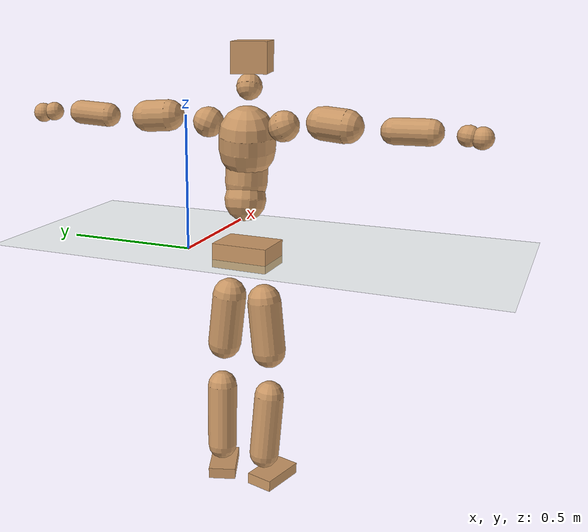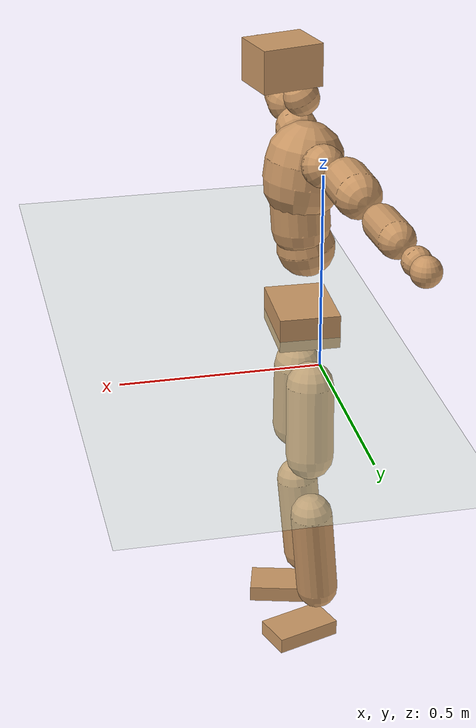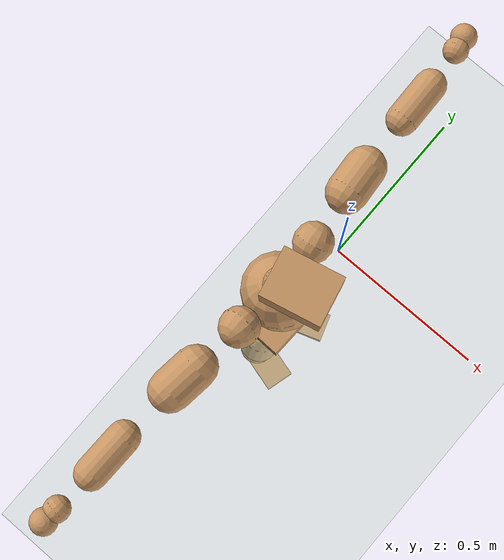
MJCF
<mujoco model="humanoid">
  <compiler coordinate="local" angle="radian"/>
  <default>
    <joint damping="0.0" armature="0.01" stiffness="0.0" limited="true"/>
    <geom conaffinity="1" condim="3" contype="7" margin="0.001" rgba="0.8 0.6 .4 1"/>
  </default>
  <asset>
    <texture type="skybox" builtin="gradient" rgb1=".4 .5 .6" rgb2="0 0 0" width="100" height="100"/>
    <texture builtin="flat" height="1278" mark="cross" markrgb="1 1 1" name="texgeom" random="0.01" rgb1="0.8 0.6 0.4" rgb2="0.8 0.6 0.4" type="cube" width="127"/>
    <texture builtin="checker" height="100" name="texplane" rgb1="0 0 0" rgb2="0.8 0.8 0.8" type="2d" width="100"/>
    <material name="MatPlane" reflectance="0.5" shininess="1" specular="1" texrepeat="60 60" texture="texplane"/>
    <material name="geom" texture="texgeom" texuniform="true"/>
  </asset>
  <worldbody>
    <light cutoff="100" diffuse="1 1 1" dir="-0 0 -1.3" directional="true" exponent="1" pos="0 0 1.3" specular=".1 .1 .1"/>
    <geom conaffinity="1" condim="3" name="floor" pos="0 0 0" rgba="0.8 0.9 0.8 1" size="100 100 .2" type="plane" material="MatPlane"/>
    <body name="Pelvis" pos="-0.0023 -0.2496 0.0214">
      <freejoint name="Pelvis"/>
      <geom type="box" contype="1" conaffinity="1" density="5359.374869" pos="-0.0126 0.0003 -0.0084" size="0.079 0.1051 0.0446" quat="0.9999 0.0000 0.0000 -0.0138" name="Pelvis"/>
      <body name="L_Hip" pos="-0.0223 0.0584 -0.0823">
        <joint name="L_Hip_x" type="hinge" pos="0 0 0" axis="1 0 0" stiffness="1600" damping="160" armature="0.02" range="-180.0000 180.0000"/>
        <joint name="L_Hip_y" type="hinge" pos="0 0 0" axis="0 1 0" stiffness="1600" damping="160" armature="0.02" range="-180.0000 180.0000"/>
        <joint name="L_Hip_z" type="hinge" pos="0 0 0" axis="0 0 1" stiffness="1600" damping="160" armature="0.02" range="-180.0000 180.0000"/>
        <geom type="capsule" contype="1" conaffinity="1" density="2040.816327" size="0.0631" fromto="0.0019 0.0107 -0.0924 0.0060 0.0334 -0.2886" name="L_Hip"/>
        <body name="L_Knee" pos="0.0079 0.0442 -0.381">
          <joint name="L_Knee_x" type="hinge" pos="0 0 0" axis="1 0 0" stiffness="1600" damping="160" armature="0.02" range="-180.0000 180.0000"/>
          <joint name="L_Knee_y" type="hinge" pos="0 0 0" axis="0 1 0" stiffness="1600" damping="160" armature="0.02" range="-180.0000 180.0000"/>
          <joint name="L_Knee_z" type="hinge" pos="0 0 0" axis="0 0 1" stiffness="1600" damping="160" armature="0.02" range="-180.0000 180.0000"/>
          <geom type="capsule" contype="1" conaffinity="1" density="1234.567901" size="0.0559" fromto="-0.0076 -0.0029 -0.0855 -0.0292 -0.0112 -0.3272" name="L_Knee"/>
          <body name="L_Ankle" pos="-0.0368 -0.0141 -0.4127">
            <joint name="L_Ankle_x" type="hinge" pos="0 0 0" axis="1 0 0" stiffness="1600" damping="160" armature="0.02" range="-180.0000 180.0000"/>
            <joint name="L_Ankle_y" type="hinge" pos="0 0 0" axis="0 1 0" stiffness="1600" damping="160" armature="0.02" range="-180.0000 180.0000"/>
            <joint name="L_Ankle_z" type="hinge" pos="0 0 0" axis="0 0 1" stiffness="1600" damping="160" armature="0.02" range="-180.0000 180.0000"/>
            <geom type="box" contype="1" conaffinity="1" density="999.999958" pos="0.0606 0.0203 -0.0298" size="0.0886 0.0519 0.0211" quat="0.9870 0.0000 0.0000 0.1607" name="L_Ankle"/>
            <body name="L_Toe" pos="0.1213 0.0406 -0.0596">
              <joint name="L_Toe_x" type="hinge" pos="0 0 0" axis="1 0 0" stiffness="1000" damping="100" armature="0.02" range="-180.0000 180.0000"/>
              <joint name="L_Toe_y" type="hinge" pos="0 0 0" axis="0 1 0" stiffness="1000" damping="100" armature="0.02" range="-180.0000 180.0000"/>
              <joint name="L_Toe_z" type="hinge" pos="0 0 0" axis="0 0 1" stiffness="1000" damping="100" armature="0.02" range="-180.0000 180.0000"/>
              <geom type="box" contype="1" conaffinity="1" density="8053239.807949" pos="0.0000 0.0000 0.0295" size="0.0011 0.0025 0.001" quat="0.9862 0.0000 0.0000 0.1655" name="L_Toe"/>
            </body>
          </body>
        </body>
      </body>
      <body name="R_Hip" pos="-0.0197 -0.0603 -0.0892">
        <joint name="R_Hip_x" type="hinge" pos="0 0 0" axis="1 0 0" stiffness="1600" damping="160" armature="0.02" range="-180.0000 180.0000"/>
        <joint name="R_Hip_y" type="hinge" pos="0 0 0" axis="0 1 0" stiffness="1600" damping="160" armature="0.02" range="-180.0000 180.0000"/>
        <joint name="R_Hip_z" type="hinge" pos="0 0 0" axis="0 0 1" stiffness="1600" damping="160" armature="0.02" range="-180.0000 180.0000"/>
        <geom type="capsule" contype="1" conaffinity="1" density="2040.816327" size="0.0624" fromto="-0.0010 -0.0104 -0.0918 -0.0033 -0.0323 -0.2860" name="R_Hip"/>
        <body name="R_Knee" pos="-0.0043 -0.0426 -0.3778">
          <joint name="R_Knee_x" type="hinge" pos="0 0 0" axis="1 0 0" stiffness="1600" damping="160" armature="0.02" range="-180.0000 180.0000"/>
          <joint name="R_Knee_y" type="hinge" pos="0 0 0" axis="0 1 0" stiffness="1600" damping="160" armature="0.02" range="-180.0000 180.0000"/>
          <joint name="R_Knee_z" type="hinge" pos="0 0 0" axis="0 0 1" stiffness="1600" damping="160" armature="0.02" range="-180.0000 180.0000"/>
          <geom type="capsule" contype="1" conaffinity="1" density="1234.567901" size="0.056" fromto="-0.0071 0.0040 -0.0856 -0.0267 0.0150 -0.3208" name="R_Knee"/>
          <body name="R_Ankle" pos="-0.0338 0.019 -0.4064">
            <joint name="R_Ankle_x" type="hinge" pos="0 0 0" axis="1 0 0" stiffness="1600" damping="160" armature="0.02" range="-180.0000 180.0000"/>
            <joint name="R_Ankle_y" type="hinge" pos="0 0 0" axis="0 1 0" stiffness="1600" damping="160" armature="0.02" range="-180.0000 180.0000"/>
            <joint name="R_Ankle_z" type="hinge" pos="0 0 0" axis="0 0 1" stiffness="1600" damping="160" armature="0.02" range="-180.0000 180.0000"/>
            <geom type="box" contype="1" conaffinity="1" density="1000.000024" pos="0.0648 -0.0176 -0.0307" size="0.0899 0.0516 0.0216" quat="0.9913 0.0000 0.0000 -0.1319" name="R_Ankle"/>
            <body name="R_Toe" pos="0.1297 -0.0351 -0.0615">
              <joint name="R_Toe_x" type="hinge" pos="0 0 0" axis="1 0 0" stiffness="1000" damping="100" armature="0.02" range="-180.0000 180.0000"/>
              <joint name="R_Toe_y" type="hinge" pos="0 0 0" axis="0 1 0" stiffness="1000" damping="100" armature="0.02" range="-180.0000 180.0000"/>
              <joint name="R_Toe_z" type="hinge" pos="0 0 0" axis="0 0 1" stiffness="1000" damping="100" armature="0.02" range="-180.0000 180.0000"/>
              <geom type="box" contype="1" conaffinity="1" density="8067170.997978" pos="0.0000 0.0000 0.0313" size="0.0011 0.0025 0.0011" quat="0.9924 0.0000 0.0000 -0.1229" name="R_Toe"/>
            </body>
          </body>
        </body>
      </body>
      <body name="Torso" pos="-0.0337 0.004 0.1212">
        <joint name="Torso_x" type="hinge" pos="0 0 0" axis="1 0 0" stiffness="2000" damping="200" armature="0.02" range="-180.0000 180.0000"/>
        <joint name="Torso_y" type="hinge" pos="0 0 0" axis="0 1 0" stiffness="2000" damping="200" armature="0.02" range="-180.0000 180.0000"/>
        <joint name="Torso_z" type="hinge" pos="0 0 0" axis="0 0 1" stiffness="2000" damping="200" armature="0.02" range="-180.0000 180.0000"/>
        <geom type="capsule" contype="1" conaffinity="1" density="2040.816327" size="0.0756" fromto="0.0151 0.0023 0.0740 0.0142 0.0022 0.0699" name="Torso"/>
        <body name="Spine" pos="0.0293 0.0045 0.1439">
          <joint name="Spine_x" type="hinge" pos="0 0 0" axis="1 0 0" stiffness="2000" damping="200" armature="0.02" range="-180.0000 180.0000"/>
          <joint name="Spine_y" type="hinge" pos="0 0 0" axis="0 1 0" stiffness="2000" damping="200" armature="0.02" range="-180.0000 180.0000"/>
          <joint name="Spine_z" type="hinge" pos="0 0 0" axis="0 0 1" stiffness="2000" damping="200" armature="0.02" range="-180.0000 180.0000"/>
          <geom type="capsule" contype="1" conaffinity="1" density="2040.816327" size="0.0758" fromto="0.0047 -0.0024 0.0756 -0.0010 0.0005 -0.0168" name="Spine"/>
          <body name="Chest" pos="0.0037 -0.0018 0.0589">
            <joint name="Chest_x" type="hinge" pos="0 0 0" axis="1 0 0" stiffness="2000" damping="200" armature="0.02" range="-180.0000 180.0000"/>
            <joint name="Chest_y" type="hinge" pos="0 0 0" axis="0 1 0" stiffness="2000" damping="200" armature="0.02" range="-180.0000 180.0000"/>
            <joint name="Chest_z" type="hinge" pos="0 0 0" axis="0 0 1" stiffness="2000" damping="200" armature="0.02" range="-180.0000 180.0000"/>
            <geom type="capsule" contype="1" conaffinity="1" density="2040.816327" size="0.101" fromto="-0.0150 -0.0059 0.0998 -0.0072 -0.0028 0.0477" name="Chest"/>
            <body name="Neck" pos="-0.0303 -0.0143 0.2162">
              <joint name="Neck_x" type="hinge" pos="0 0 0" axis="1 0 0" stiffness="1000" damping="100" armature="0.02" range="-180.0000 180.0000"/>
              <joint name="Neck_y" type="hinge" pos="0 0 0" axis="0 1 0" stiffness="1000" damping="100" armature="0.02" range="-180.0000 180.0000"/>
              <joint name="Neck_z" type="hinge" pos="0 0 0" axis="0 0 1" stiffness="1000" damping="100" armature="0.02" range="-180.0000 180.0000"/>
              <geom type="capsule" contype="1" conaffinity="1" density="1000" size="0.0455" fromto="0.0252 0.0050 0.0474 0.0261 0.0052 0.0491" name="Neck"/>
              <body name="Head" pos="0.0513 0.0102 0.0965">
                <joint name="Head_x" type="hinge" pos="0 0 0" axis="1 0 0" stiffness="1000" damping="100" armature="0.02" range="-180.0000 180.0000"/>
                <joint name="Head_y" type="hinge" pos="0 0 0" axis="0 1 0" stiffness="1000" damping="100" armature="0.02" range="-180.0000 180.0000"/>
                <joint name="Head_z" type="hinge" pos="0 0 0" axis="0 0 1" stiffness="1000" damping="100" armature="0.02" range="-180.0000 180.0000"/>
                <geom type="box" contype="1" conaffinity="1" density="2249.999981" pos="0.0266 0.0061 0.0493" size="0.0789 0.0639 0.0541" quat="0.9937 0.0000 0.0000 0.1125" name="Head"/>
              </body>
            </body>
            <body name="L_Thorax" pos="-0.0147 0.0747 0.1141">
              <joint name="L_Thorax_x" type="hinge" pos="0 0 0" axis="1 0 0" stiffness="1000" damping="100" armature="0.02" range="-180.0000 180.0000"/>
              <joint name="L_Thorax_y" type="hinge" pos="0 0 0" axis="0 1 0" stiffness="1000" damping="100" armature="0.02" range="-180.0000 180.0000"/>
              <joint name="L_Thorax_z" type="hinge" pos="0 0 0" axis="0 0 1" stiffness="1000" damping="100" armature="0.02" range="-180.0000 180.0000"/>
              <geom type="capsule" contype="1" conaffinity="1" density="1000" size="0.054" fromto="-0.0093 0.0630 0.0239 -0.0096 0.0649 0.0246" name="L_Thorax"/>
              <body name="L_Shoulder" pos="-0.0189 0.1279 0.0486">
                <joint name="L_Shoulder_x" type="hinge" pos="0 0 0" axis="1 0 0" stiffness="1000" damping="100" armature="0.02" range="-720.0000 720.0000"/>
                <joint name="L_Shoulder_y" type="hinge" pos="0 0 0" axis="0 1 0" stiffness="1000" damping="100" armature="0.02" range="-720.0000 720.0000"/>
                <joint name="L_Shoulder_z" type="hinge" pos="0 0 0" axis="0 0 1" stiffness="1000" damping="100" armature="0.02" range="-720.0000 720.0000"/>
                <geom type="capsule" contype="1" conaffinity="1" density="1000" size="0.0563" fromto="-0.0074 0.0858 -0.0061 -0.0145 0.1677 -0.0118" name="L_Shoulder"/>
                <body name="L_Elbow" pos="-0.0219 0.2534 -0.0179">
                  <joint name="L_Elbow_x" type="hinge" pos="0 0 0" axis="1 0 0" stiffness="1000" damping="100" armature="0.02" range="-720.0000 720.0000"/>
                  <joint name="L_Elbow_y" type="hinge" pos="0 0 0" axis="0 1 0" stiffness="1000" damping="100" armature="0.02" range="-720.0000 720.0000"/>
                  <joint name="L_Elbow_z" type="hinge" pos="0 0 0" axis="0 0 1" stiffness="1000" damping="100" armature="0.02" range="-720.0000 720.0000"/>
                  <geom type="capsule" contype="1" conaffinity="1" density="1000" size="0.0433" fromto="-0.0016 0.0732 0.0037 -0.0042 0.1883 0.0094" name="L_Elbow"/>
                  <body name="L_Wrist" pos="-0.0059 0.2615 0.0131">
                    <joint name="L_Wrist_x" type="hinge" pos="0 0 0" axis="1 0 0" stiffness="600" damping="60" armature="0.02" range="-180.0000 180.0000"/>
                    <joint name="L_Wrist_y" type="hinge" pos="0 0 0" axis="0 1 0" stiffness="600" damping="60" armature="0.02" range="-180.0000 180.0000"/>
                    <joint name="L_Wrist_z" type="hinge" pos="0 0 0" axis="0 0 1" stiffness="600" damping="60" armature="0.02" range="-180.0000 180.0000"/>
                    <geom type="capsule" contype="1" conaffinity="1" density="1000" size="0.0341" fromto="-0.0075 0.0422 -0.0053 -0.0079 0.0441 -0.0056" name="L_Wrist"/>
                    <body name="L_Hand" pos="-0.0154 0.0863 -0.0109">
                      <joint name="L_Hand_x" type="hinge" pos="0 0 0" axis="1 0 0" stiffness="600" damping="60" armature="0.02" range="-180.0000 180.0000"/>
                      <joint name="L_Hand_y" type="hinge" pos="0 0 0" axis="0 1 0" stiffness="600" damping="60" armature="0.02" range="-180.0000 180.0000"/>
                      <joint name="L_Hand_z" type="hinge" pos="0 0 0" axis="0 0 1" stiffness="600" damping="60" armature="0.02" range="-180.0000 180.0000"/>
                      <geom type="sphere" contype="1" conaffinity="1" density="1000" size="0.0355" pos="0.0000 0.0000 0.0000" name="L_Hand"/>
                    </body>
                  </body>
                </body>
              </body>
            </body>
            <body name="R_Thorax" pos="-0.0216 -0.0866 0.1121">
              <joint name="R_Thorax_x" type="hinge" pos="0 0 0" axis="1 0 0" stiffness="1000" damping="100" armature="0.02" range="-180.0000 180.0000"/>
              <joint name="R_Thorax_y" type="hinge" pos="0 0 0" axis="0 1 0" stiffness="1000" damping="100" armature="0.02" range="-180.0000 180.0000"/>
              <joint name="R_Thorax_z" type="hinge" pos="0 0 0" axis="0 0 1" stiffness="1000" damping="100" armature="0.02" range="-180.0000 180.0000"/>
              <geom type="capsule" contype="1" conaffinity="1" density="1000" size="0.054" fromto="-0.0042 -0.0581 0.0250 -0.0043 -0.0600 0.0258" name="R_Thorax"/>
              <body name="R_Shoulder" pos="-0.0085 -0.1181 0.0508">
                <joint name="R_Shoulder_x" type="hinge" pos="0 0 0" axis="1 0 0" stiffness="1000" damping="100" armature="0.02" range="-720.0000 720.0000"/>
                <joint name="R_Shoulder_y" type="hinge" pos="0 0 0" axis="0 1 0" stiffness="1000" damping="100" armature="0.02" range="-720.0000 720.0000"/>
                <joint name="R_Shoulder_z" type="hinge" pos="0 0 0" axis="0 0 1" stiffness="1000" damping="100" armature="0.02" range="-720.0000 720.0000"/>
                <geom type="capsule" contype="1" conaffinity="1" density="1000" size="0.0571" fromto="-0.0107 -0.0863 -0.0058 -0.0213 -0.1715 -0.0114" name="R_Shoulder"/>
                <body name="R_Elbow" pos="-0.0319 -0.2578 -0.0172">
                  <joint name="R_Elbow_x" type="hinge" pos="0 0 0" axis="1 0 0" stiffness="1000" damping="100" armature="0.02" range="-720.0000 720.0000"/>
                  <joint name="R_Elbow_y" type="hinge" pos="0 0 0" axis="0 1 0" stiffness="1000" damping="100" armature="0.02" range="-720.0000 720.0000"/>
                  <joint name="R_Elbow_z" type="hinge" pos="0 0 0" axis="0 0 1" stiffness="1000" damping="100" armature="0.02" range="-720.0000 720.0000"/>
                  <geom type="capsule" contype="1" conaffinity="1" density="1000" size="0.0438" fromto="-0.0011 -0.0738 0.0013 -0.0029 -0.1905 0.0034" name="R_Elbow"/>
                  <body name="R_Wrist" pos="-0.004 -0.2643 0.0047">
                    <joint name="R_Wrist_x" type="hinge" pos="0 0 0" axis="1 0 0" stiffness="600" damping="60" armature="0.02" range="-180.0000 180.0000"/>
                    <joint name="R_Wrist_y" type="hinge" pos="0 0 0" axis="0 1 0" stiffness="600" damping="60" armature="0.02" range="-180.0000 180.0000"/>
                    <joint name="R_Wrist_z" type="hinge" pos="0 0 0" axis="0 0 1" stiffness="600" damping="60" armature="0.02" range="-180.0000 180.0000"/>
                    <geom type="capsule" contype="1" conaffinity="1" density="1000" size="0.0345" fromto="-0.0049 -0.0430 -0.0042 -0.0051 -0.0450 -0.0044" name="R_Wrist"/>
                    <body name="R_Hand" pos="-0.01 -0.0879 -0.0086">
                      <joint name="R_Hand_x" type="hinge" pos="0 0 0" axis="1 0 0" stiffness="600" damping="60" armature="0.02" range="-180.0000 180.0000"/>
                      <joint name="R_Hand_y" type="hinge" pos="0 0 0" axis="0 1 0" stiffness="600" damping="60" armature="0.02" range="-180.0000 180.0000"/>
                      <joint name="R_Hand_z" type="hinge" pos="0 0 0" axis="0 0 1" stiffness="600" damping="60" armature="0.02" range="-180.0000 180.0000"/>
                      <geom type="sphere" contype="1" conaffinity="1" density="1000" size="0.0358" pos="0.0000 0.0000 0.0000" name="R_Hand"/>
                    </body>
                  </body>
                </body>
              </body>
            </body>
          </body>
        </body>
      </body>
    </body>
  </worldbody>
  <actuator>
    <motor name="L_Hip_x" joint="L_Hip_x" gear="500"/>
    <motor name="L_Hip_y" joint="L_Hip_y" gear="500"/>
    <motor name="L_Hip_z" joint="L_Hip_z" gear="500"/>
    <motor name="L_Knee_x" joint="L_Knee_x" gear="500"/>
    <motor name="L_Knee_y" joint="L_Knee_y" gear="500"/>
    <motor name="L_Knee_z" joint="L_Knee_z" gear="500"/>
    <motor name="L_Ankle_x" joint="L_Ankle_x" gear="500"/>
    <motor name="L_Ankle_y" joint="L_Ankle_y" gear="500"/>
    <motor name="L_Ankle_z" joint="L_Ankle_z" gear="500"/>
    <motor name="L_Toe_x" joint="L_Toe_x" gear="500"/>
    <motor name="L_Toe_y" joint="L_Toe_y" gear="500"/>
    <motor name="L_Toe_z" joint="L_Toe_z" gear="500"/>
    <motor name="R_Hip_x" joint="R_Hip_x" gear="500"/>
    <motor name="R_Hip_y" joint="R_Hip_y" gear="500"/>
    <motor name="R_Hip_z" joint="R_Hip_z" gear="500"/>
    <motor name="R_Knee_x" joint="R_Knee_x" gear="500"/>
    <motor name="R_Knee_y" joint="R_Knee_y" gear="500"/>
    <motor name="R_Knee_z" joint="R_Knee_z" gear="500"/>
    <motor name="R_Ankle_x" joint="R_Ankle_x" gear="500"/>
    <motor name="R_Ankle_y" joint="R_Ankle_y" gear="500"/>
    <motor name="R_Ankle_z" joint="R_Ankle_z" gear="500"/>
    <motor name="R_Toe_x" joint="R_Toe_x" gear="500"/>
    <motor name="R_Toe_y" joint="R_Toe_y" gear="500"/>
    <motor name="R_Toe_z" joint="R_Toe_z" gear="500"/>
    <motor name="Torso_x" joint="Torso_x" gear="500"/>
    <motor name="Torso_y" joint="Torso_y" gear="500"/>
    <motor name="Torso_z" joint="Torso_z" gear="500"/>
    <motor name="Spine_x" joint="Spine_x" gear="500"/>
    <motor name="Spine_y" joint="Spine_y" gear="500"/>
    <motor name="Spine_z" joint="Spine_z" gear="500"/>
    <motor name="Chest_x" joint="Chest_x" gear="500"/>
    <motor name="Chest_y" joint="Chest_y" gear="500"/>
    <motor name="Chest_z" joint="Chest_z" gear="500"/>
    <motor name="Neck_x" joint="Neck_x" gear="500"/>
    <motor name="Neck_y" joint="Neck_y" gear="500"/>
    <motor name="Neck_z" joint="Neck_z" gear="500"/>
    <motor name="Head_x" joint="Head_x" gear="500"/>
    <motor name="Head_y" joint="Head_y" gear="500"/>
    <motor name="Head_z" joint="Head_z" gear="500"/>
    <motor name="L_Thorax_x" joint="L_Thorax_x" gear="500"/>
    <motor name="L_Thorax_y" joint="L_Thorax_y" gear="500"/>
    <motor name="L_Thorax_z" joint="L_Thorax_z" gear="500"/>
    <motor name="L_Shoulder_x" joint="L_Shoulder_x" gear="500"/>
    <motor name="L_Shoulder_y" joint="L_Shoulder_y" gear="500"/>
    <motor name="L_Shoulder_z" joint="L_Shoulder_z" gear="500"/>
    <motor name="L_Elbow_x" joint="L_Elbow_x" gear="500"/>
    <motor name="L_Elbow_y" joint="L_Elbow_y" gear="500"/>
    <motor name="L_Elbow_z" joint="L_Elbow_z" gear="500"/>
    <motor name="L_Wrist_x" joint="L_Wrist_x" gear="500"/>
    <motor name="L_Wrist_y" joint="L_Wrist_y" gear="500"/>
    <motor name="L_Wrist_z" joint="L_Wrist_z" gear="500"/>
    <motor name="L_Hand_x" joint="L_Hand_x" gear="500"/>
    <motor name="L_Hand_y" joint="L_Hand_y" gear="500"/>
    <motor name="L_Hand_z" joint="L_Hand_z" gear="500"/>
    <motor name="R_Thorax_x" joint="R_Thorax_x" gear="500"/>
    <motor name="R_Thorax_y" joint="R_Thorax_y" gear="500"/>
    <motor name="R_Thorax_z" joint="R_Thorax_z" gear="500"/>
    <motor name="R_Shoulder_x" joint="R_Shoulder_x" gear="500"/>
    <motor name="R_Shoulder_y" joint="R_Shoulder_y" gear="500"/>
    <motor name="R_Shoulder_z" joint="R_Shoulder_z" gear="500"/>
    <motor name="R_Elbow_x" joint="R_Elbow_x" gear="500"/>
    <motor name="R_Elbow_y" joint="R_Elbow_y" gear="500"/>
    <motor name="R_Elbow_z" joint="R_Elbow_z" gear="500"/>
    <motor name="R_Wrist_x" joint="R_Wrist_x" gear="500"/>
    <motor name="R_Wrist_y" joint="R_Wrist_y" gear="500"/>
    <motor name="R_Wrist_z" joint="R_Wrist_z" gear="500"/>
    <motor name="R_Hand_x" joint="R_Hand_x" gear="500"/>
    <motor name="R_Hand_y" joint="R_Hand_y" gear="500"/>
    <motor name="R_Hand_z" joint="R_Hand_z" gear="500"/>
  </actuator>
  <contact>
    <exclude body1="Torso" body2="Chest"/>
    <exclude body1="Head" body2="Chest"/>
    <exclude body1="R_Knee" body2="R_Toe"/>
    <exclude body1="R_Knee" body2="L_Ankle"/>
    <exclude body1="R_Knee" body2="L_Toe"/>
    <exclude body1="L_Knee" body2="L_Toe"/>
    <exclude body1="L_Knee" body2="R_Ankle"/>
    <exclude body1="L_Knee" body2="R_Toe"/>
    <exclude body1="L_Shoulder" body2="Chest"/>
    <exclude body1="R_Shoulder" body2="Chest"/>
  </contact>
  <sensor/>
  <size njmax="700" nconmax="700"/>
</mujoco>
